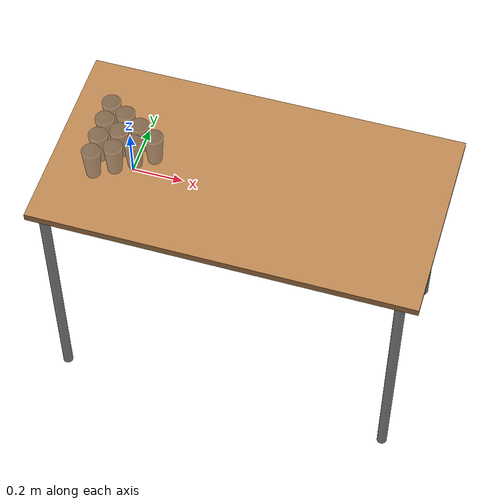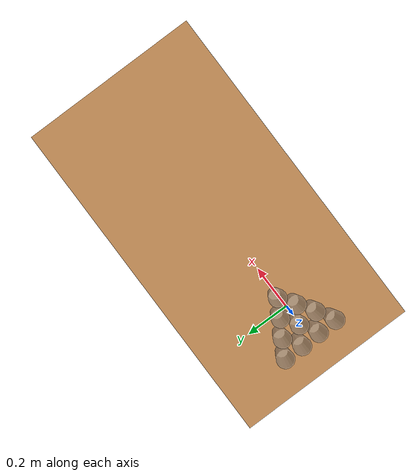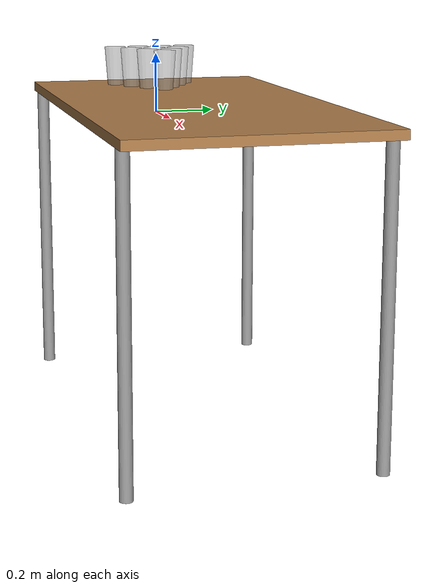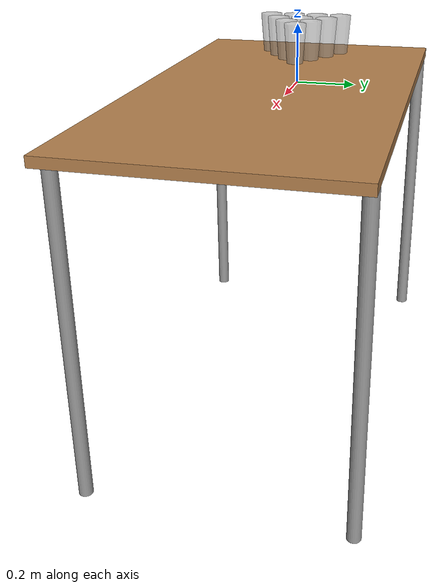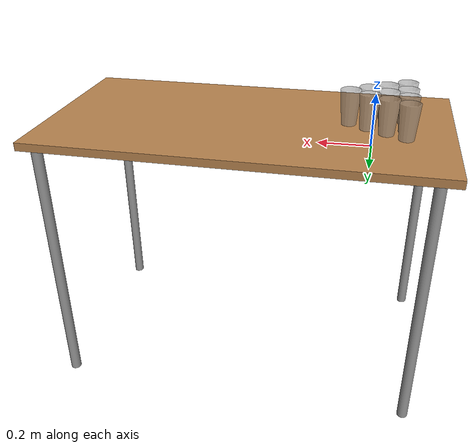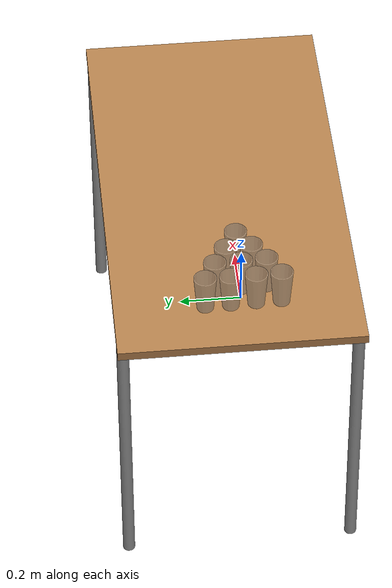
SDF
<?xml version='1.0'?>
<sdf version='1.7'>
  <model name='third_full_pong'>
    <model name='first_full_pong'>
      <model name='plastic_cup'>
        <link name='link'>
          <pose>0 0 0.065 0 -0 0</pose>
          <inertial>
            <mass>0.0599</mass>
            <inertia>
              <ixx>0.000302896</ixx>
              <ixy>0</ixy>
              <ixz>0</ixz>
              <iyy>0.000302896</iyy>
              <iyz>0</iyz>
              <izz>3.28764e-05</izz>
            </inertia>
          </inertial>
          <collision name='collision'>
            <geometry>
              <mesh>
                <uri>model://plastic_cup/meshes/plastic_cup.dae</uri>
              </mesh>
            </geometry>
            <surface>
              <contact>
                <poissons_ratio>0.35</poissons_ratio>
                <elastic_modulus>3.10264e+09</elastic_modulus>
                <ode>
                  <kp>100000</kp>
                  <kd>100</kd>
                  <max_vel>100</max_vel>
                  <min_depth>0.001</min_depth>
                </ode>
              </contact>
              <friction>
                <torsional>
                  <coefficient>1</coefficient>
                  <use_patch_radius>0</use_patch_radius>
                  <surface_radius>0.01</surface_radius>
                </torsional>
              </friction>
            </surface>
          </collision>
          <visual name='visual'>
            <geometry>
              <mesh>
                <uri>model://plastic_cup/meshes/plastic_cup.dae</uri>
              </mesh>
            </geometry>
            <material>
              <script>
                <uri>file://media/materials/scripts/gazebo.material</uri>
                <name>Gazebo/GreyTransparent</name>
              </script>
            </material>
          </visual>
        </link>
        <pose>-0.111861 -0.12665 0.09322 0 -0 0</pose>
      </model>
      <model name='plastic_cup_clone'>
        <link name='link'>
          <pose>0 0 0.065 0 -0 0</pose>
          <inertial>
            <mass>0.0599</mass>
            <inertia>
              <ixx>0.000302896</ixx>
              <ixy>0</ixy>
              <ixz>0</ixz>
              <iyy>0.000302896</iyy>
              <iyz>0</iyz>
              <izz>3.28764e-05</izz>
            </inertia>
          </inertial>
          <collision name='collision'>
            <geometry>
              <mesh>
                <uri>model://plastic_cup/meshes/plastic_cup.dae</uri>
              </mesh>
            </geometry>
            <surface>
              <contact>
                <poissons_ratio>0.35</poissons_ratio>
                <elastic_modulus>3.10264e+09</elastic_modulus>
                <ode>
                  <kp>100000</kp>
                  <kd>100</kd>
                  <max_vel>100</max_vel>
                  <min_depth>0.001</min_depth>
                </ode>
              </contact>
              <friction>
                <torsional>
                  <coefficient>1</coefficient>
                  <use_patch_radius>0</use_patch_radius>
                  <surface_radius>0.01</surface_radius>
                </torsional>
              </friction>
            </surface>
          </collision>
          <visual name='visual'>
            <geometry>
              <mesh>
                <uri>model://plastic_cup/meshes/plastic_cup.dae</uri>
              </mesh>
            </geometry>
            <material>
              <script>
                <uri>file://media/materials/scripts/gazebo.material</uri>
                <name>Gazebo/GreyTransparent</name>
              </script>
            </material>
          </visual>
        </link>
        <pose>-0.113573 -0.044904 0.093217 0 -0 0</pose>
      </model>
      <model name='plastic_cup_clone_0'>
        <link name='link'>
          <pose>0 0 0.065 0 -0 0</pose>
          <inertial>
            <mass>0.0599</mass>
            <inertia>
              <ixx>0.000302896</ixx>
              <ixy>0</ixy>
              <ixz>0</ixz>
              <iyy>0.000302896</iyy>
              <iyz>0</iyz>
              <izz>3.28764e-05</izz>
            </inertia>
          </inertial>
          <collision name='collision'>
            <geometry>
              <mesh>
                <uri>model://plastic_cup/meshes/plastic_cup.dae</uri>
              </mesh>
            </geometry>
            <surface>
              <contact>
                <poissons_ratio>0.35</poissons_ratio>
                <elastic_modulus>3.10264e+09</elastic_modulus>
                <ode>
                  <kp>100000</kp>
                  <kd>100</kd>
                  <max_vel>100</max_vel>
                  <min_depth>0.001</min_depth>
                </ode>
              </contact>
              <friction>
                <torsional>
                  <coefficient>1</coefficient>
                  <use_patch_radius>0</use_patch_radius>
                  <surface_radius>0.01</surface_radius>
                </torsional>
              </friction>
            </surface>
          </collision>
          <visual name='visual'>
            <geometry>
              <mesh>
                <uri>model://plastic_cup/meshes/plastic_cup.dae</uri>
              </mesh>
            </geometry>
            <material>
              <script>
                <uri>file://media/materials/scripts/gazebo.material</uri>
                <name>Gazebo/GreyTransparent</name>
              </script>
            </material>
          </visual>
        </link>
        <pose>-0.11596 0.037161 0.093217 0 -0 0</pose>
      </model>
      <model name='plastic_cup_clone_1'>
        <link name='link'>
          <pose>0 0 0.065 0 -0 0</pose>
          <inertial>
            <mass>0.0599</mass>
            <inertia>
              <ixx>0.000302896</ixx>
              <ixy>0</ixy>
              <ixz>0</ixz>
              <iyy>0.000302896</iyy>
              <iyz>0</iyz>
              <izz>3.28764e-05</izz>
            </inertia>
          </inertial>
          <collision name='collision'>
            <geometry>
              <mesh>
                <uri>model://plastic_cup/meshes/plastic_cup.dae</uri>
              </mesh>
            </geometry>
            <surface>
              <contact>
                <poissons_ratio>0.35</poissons_ratio>
                <elastic_modulus>3.10264e+09</elastic_modulus>
                <ode>
                  <kp>100000</kp>
                  <kd>100</kd>
                  <max_vel>100</max_vel>
                  <min_depth>0.001</min_depth>
                </ode>
              </contact>
              <friction>
                <torsional>
                  <coefficient>1</coefficient>
                  <use_patch_radius>0</use_patch_radius>
                  <surface_radius>0.01</surface_radius>
                </torsional>
              </friction>
            </surface>
          </collision>
          <visual name='visual'>
            <geometry>
              <mesh>
                <uri>model://plastic_cup/meshes/plastic_cup.dae</uri>
              </mesh>
            </geometry>
            <material>
              <script>
                <uri>file://media/materials/scripts/gazebo.material</uri>
                <name>Gazebo/GreyTransparent</name>
              </script>
            </material>
          </visual>
        </link>
        <pose>-0.117274 0.119285 0.093217 0 -0 0</pose>
      </model>
      <model name='plastic_cup_clone_2'>
        <link name='link'>
          <pose>0 0 0.065 0 -0 0</pose>
          <inertial>
            <mass>0.0599</mass>
            <inertia>
              <ixx>0.000302896</ixx>
              <ixy>0</ixy>
              <ixz>0</ixz>
              <iyy>0.000302896</iyy>
              <iyz>0</iyz>
              <izz>3.28764e-05</izz>
            </inertia>
          </inertial>
          <collision name='collision'>
            <geometry>
              <mesh>
                <uri>model://plastic_cup/meshes/plastic_cup.dae</uri>
              </mesh>
            </geometry>
            <surface>
              <contact>
                <poissons_ratio>0.35</poissons_ratio>
                <elastic_modulus>3.10264e+09</elastic_modulus>
                <ode>
                  <kp>100000</kp>
                  <kd>100</kd>
                  <max_vel>100</max_vel>
                  <min_depth>0.001</min_depth>
                </ode>
              </contact>
              <friction>
                <torsional>
                  <coefficient>1</coefficient>
                  <use_patch_radius>0</use_patch_radius>
                  <surface_radius>0.01</surface_radius>
                </torsional>
              </friction>
            </surface>
          </collision>
          <visual name='visual'>
            <geometry>
              <mesh>
                <uri>model://plastic_cup/meshes/plastic_cup.dae</uri>
              </mesh>
            </geometry>
            <material>
              <script>
                <uri>file://media/materials/scripts/gazebo.material</uri>
                <name>Gazebo/GreyTransparent</name>
              </script>
            </material>
          </visual>
        </link>
        <pose>0.024979 -0.042903 0.093217 0 -0 0</pose>
      </model>
      <model name='plastic_cup_clone_3'>
        <link name='link'>
          <pose>0 0 0.065 0 -0 0</pose>
          <inertial>
            <mass>0.0599</mass>
            <inertia>
              <ixx>0.000302896</ixx>
              <ixy>0</ixy>
              <ixz>0</ixz>
              <iyy>0.000302896</iyy>
              <iyz>0</iyz>
              <izz>3.28764e-05</izz>
            </inertia>
          </inertial>
          <collision name='collision'>
            <geometry>
              <mesh>
                <uri>model://plastic_cup/meshes/plastic_cup.dae</uri>
              </mesh>
            </geometry>
            <surface>
              <contact>
                <poissons_ratio>0.35</poissons_ratio>
                <elastic_modulus>3.10264e+09</elastic_modulus>
                <ode>
                  <kp>100000</kp>
                  <kd>100</kd>
                  <max_vel>100</max_vel>
                  <min_depth>0.001</min_depth>
                </ode>
              </contact>
              <friction>
                <torsional>
                  <coefficient>1</coefficient>
                  <use_patch_radius>0</use_patch_radius>
                  <surface_radius>0.01</surface_radius>
                </torsional>
              </friction>
            </surface>
          </collision>
          <visual name='visual'>
            <geometry>
              <mesh>
                <uri>model://plastic_cup/meshes/plastic_cup.dae</uri>
              </mesh>
            </geometry>
            <material>
              <script>
                <uri>file://media/materials/scripts/gazebo.material</uri>
                <name>Gazebo/GreyTransparent</name>
              </script>
            </material>
          </visual>
        </link>
        <pose>-0.0405 -0.085417 0.093217 0 -0 0</pose>
      </model>
      <model name='plastic_cup_clone_4'>
        <link name='link'>
          <pose>0 0 0.065 0 -0 0</pose>
          <inertial>
            <mass>0.0599</mass>
            <inertia>
              <ixx>0.000302896</ixx>
              <ixy>0</ixy>
              <ixz>0</ixz>
              <iyy>0.000302896</iyy>
              <iyz>0</iyz>
              <izz>3.28764e-05</izz>
            </inertia>
          </inertial>
          <collision name='collision'>
            <geometry>
              <mesh>
                <uri>model://plastic_cup/meshes/plastic_cup.dae</uri>
              </mesh>
            </geometry>
            <surface>
              <contact>
                <poissons_ratio>0.35</poissons_ratio>
                <elastic_modulus>3.10264e+09</elastic_modulus>
                <ode>
                  <kp>100000</kp>
                  <kd>100</kd>
                  <max_vel>100</max_vel>
                  <min_depth>0.001</min_depth>
                </ode>
              </contact>
              <friction>
                <torsional>
                  <coefficient>1</coefficient>
                  <use_patch_radius>0</use_patch_radius>
                  <surface_radius>0.01</surface_radius>
                </torsional>
              </friction>
            </surface>
          </collision>
          <visual name='visual'>
            <geometry>
              <mesh>
                <uri>model://plastic_cup/meshes/plastic_cup.dae</uri>
              </mesh>
            </geometry>
            <material>
              <script>
                <uri>file://media/materials/scripts/gazebo.material</uri>
                <name>Gazebo/GreyTransparent</name>
              </script>
            </material>
          </visual>
        </link>
        <pose>-0.044403 -0.003103 0.093217 0 -0 0</pose>
      </model>
      <model name='plastic_cup_clone_5'>
        <link name='link'>
          <pose>0 0 0.065 0 -0 0</pose>
          <inertial>
            <mass>0.0599</mass>
            <inertia>
              <ixx>0.000302896</ixx>
              <ixy>0</ixy>
              <ixz>0</ixz>
              <iyy>0.000302896</iyy>
              <iyz>0</iyz>
              <izz>3.28764e-05</izz>
            </inertia>
          </inertial>
          <collision name='collision'>
            <geometry>
              <mesh>
                <uri>model://plastic_cup/meshes/plastic_cup.dae</uri>
              </mesh>
            </geometry>
            <surface>
              <contact>
                <poissons_ratio>0.35</poissons_ratio>
                <elastic_modulus>3.10264e+09</elastic_modulus>
                <ode>
                  <kp>100000</kp>
                  <kd>100</kd>
                  <max_vel>100</max_vel>
                  <min_depth>0.001</min_depth>
                </ode>
              </contact>
              <friction>
                <torsional>
                  <coefficient>1</coefficient>
                  <use_patch_radius>0</use_patch_radius>
                  <surface_radius>0.01</surface_radius>
                </torsional>
              </friction>
            </surface>
          </collision>
          <visual name='visual'>
            <geometry>
              <mesh>
                <uri>model://plastic_cup/meshes/plastic_cup.dae</uri>
              </mesh>
            </geometry>
            <material>
              <script>
                <uri>file://media/materials/scripts/gazebo.material</uri>
                <name>Gazebo/GreyTransparent</name>
              </script>
            </material>
          </visual>
        </link>
        <pose>-0.047829 0.081936 0.093217 0 -0 0</pose>
      </model>
      <model name='plastic_cup_clone_6'>
        <link name='link'>
          <pose>0 0 0.065 0 -0 0</pose>
          <inertial>
            <mass>0.0599</mass>
            <inertia>
              <ixx>0.000302896</ixx>
              <ixy>0</ixy>
              <ixz>0</ixz>
              <iyy>0.000302896</iyy>
              <iyz>0</iyz>
              <izz>3.28764e-05</izz>
            </inertia>
          </inertial>
          <collision name='collision'>
            <geometry>
              <mesh>
                <uri>model://plastic_cup/meshes/plastic_cup.dae</uri>
              </mesh>
            </geometry>
            <surface>
              <contact>
                <poissons_ratio>0.35</poissons_ratio>
                <elastic_modulus>3.10264e+09</elastic_modulus>
                <ode>
                  <kp>100000</kp>
                  <kd>100</kd>
                  <max_vel>100</max_vel>
                  <min_depth>0.001</min_depth>
                </ode>
              </contact>
              <friction>
                <torsional>
                  <coefficient>1</coefficient>
                  <use_patch_radius>0</use_patch_radius>
                  <surface_radius>0.01</surface_radius>
                </torsional>
              </friction>
            </surface>
          </collision>
          <visual name='visual'>
            <geometry>
              <mesh>
                <uri>model://plastic_cup/meshes/plastic_cup.dae</uri>
              </mesh>
            </geometry>
            <material>
              <script>
                <uri>file://media/materials/scripts/gazebo.material</uri>
                <name>Gazebo/GreyTransparent</name>
              </script>
            </material>
          </visual>
        </link>
        <pose>0.02088 0.040894 0.093217 0 -0 0</pose>
      </model>
      <model name='plastic_cup_clone_7'>
        <link name='link'>
          <pose>0 0 0.065 0 -0 0</pose>
          <inertial>
            <mass>0.0599</mass>
            <inertia>
              <ixx>0.000302896</ixx>
              <ixy>0</ixy>
              <ixz>0</ixz>
              <iyy>0.000302896</iyy>
              <iyz>0</iyz>
              <izz>3.28764e-05</izz>
            </inertia>
          </inertial>
          <collision name='collision'>
            <geometry>
              <mesh>
                <uri>model://plastic_cup/meshes/plastic_cup.dae</uri>
              </mesh>
            </geometry>
            <surface>
              <contact>
                <poissons_ratio>0.35</poissons_ratio>
                <elastic_modulus>3.10264e+09</elastic_modulus>
                <ode>
                  <kp>100000</kp>
                  <kd>100</kd>
                  <max_vel>100</max_vel>
                  <min_depth>0.001</min_depth>
                </ode>
              </contact>
              <friction>
                <torsional>
                  <coefficient>1</coefficient>
                  <use_patch_radius>0</use_patch_radius>
                  <surface_radius>0.01</surface_radius>
                </torsional>
              </friction>
            </surface>
          </collision>
          <visual name='visual'>
            <geometry>
              <mesh>
                <uri>model://plastic_cup/meshes/plastic_cup.dae</uri>
              </mesh>
            </geometry>
            <material>
              <script>
                <uri>file://media/materials/scripts/gazebo.material</uri>
                <name>Gazebo/GreyTransparent</name>
              </script>
            </material>
          </visual>
        </link>
        <pose>0.089903 0.001537 0.093217 0 -0 0</pose>
      </model>
      <model name='table'>
        <static>1</static>
        <link name='link'>
          <collision name='surface'>
            <pose>0 0 1 0 -0 0</pose>
            <geometry>
              <box>
                <size>1.5 0.8 0.03</size>
              </box>
            </geometry>
            <surface>
              <friction>
                <ode>
                  <mu>0.6</mu>
                  <mu2>0.6</mu2>
                </ode>
              </friction>
            </surface>
          </collision>
          <visual name='visual1'>
            <pose>0 0 1 0 -0 0</pose>
            <geometry>
              <box>
                <size>1.5 0.8 0.03</size>
              </box>
            </geometry>
            <material>
              <script>
                <uri>file://media/materials/scripts/gazebo.material</uri>
                <name>Gazebo/Wood</name>
              </script>
            </material>
          </visual>
          <collision name='front_left_leg'>
            <pose>0.68 0.38 0.5 0 -0 0</pose>
            <geometry>
              <cylinder>
                <radius>0.02</radius>
                <length>1</length>
              </cylinder>
            </geometry>
          </collision>
          <visual name='front_left_leg'>
            <pose>0.68 0.38 0.5 0 -0 0</pose>
            <geometry>
              <cylinder>
                <radius>0.02</radius>
                <length>1</length>
              </cylinder>
            </geometry>
            <material>
              <script>
                <uri>file://media/materials/scripts/gazebo.material</uri>
                <name>Gazebo/Grey</name>
              </script>
            </material>
          </visual>
          <collision name='front_right_leg'>
            <pose>0.68 -0.38 0.5 0 -0 0</pose>
            <geometry>
              <cylinder>
                <radius>0.02</radius>
                <length>1</length>
              </cylinder>
            </geometry>
          </collision>
          <visual name='front_right_leg'>
            <pose>0.68 -0.38 0.5 0 -0 0</pose>
            <geometry>
              <cylinder>
                <radius>0.02</radius>
                <length>1</length>
              </cylinder>
            </geometry>
            <material>
              <script>
                <uri>file://media/materials/scripts/gazebo.material</uri>
                <name>Gazebo/Grey</name>
              </script>
            </material>
          </visual>
          <collision name='back_right_leg'>
            <pose>-0.68 -0.38 0.5 0 -0 0</pose>
            <geometry>
              <cylinder>
                <radius>0.02</radius>
                <length>1</length>
              </cylinder>
            </geometry>
          </collision>
          <visual name='back_right_leg'>
            <pose>-0.68 -0.38 0.5 0 -0 0</pose>
            <geometry>
              <cylinder>
                <radius>0.02</radius>
                <length>1</length>
              </cylinder>
            </geometry>
            <material>
              <script>
                <uri>file://media/materials/scripts/gazebo.material</uri>
                <name>Gazebo/Grey</name>
              </script>
            </material>
          </visual>
          <collision name='back_left_leg'>
            <pose>-0.68 0.38 0.5 0 -0 0</pose>
            <geometry>
              <cylinder>
                <radius>0.02</radius>
                <length>1</length>
              </cylinder>
            </geometry>
          </collision>
          <visual name='back_left_leg'>
            <pose>-0.68 0.38 0.5 0 -0 0</pose>
            <geometry>
              <cylinder>
                <radius>0.02</radius>
                <length>1</length>
              </cylinder>
            </geometry>
            <material>
              <script>
                <uri>file://media/materials/scripts/gazebo.material</uri>
                <name>Gazebo/Grey</name>
              </script>
            </material>
          </visual>
        </link>
        <pose>0.455637 0.022164 -0.932173 0 -0 0</pose>
      </model>
      <static>0</static>
      <allow_auto_disable>1</allow_auto_disable>
      <pose>0 0 -0 0 -0 0</pose>
    </model>
    <static>0</static>
    <allow_auto_disable>1</allow_auto_disable>
  </model>
</sdf>
